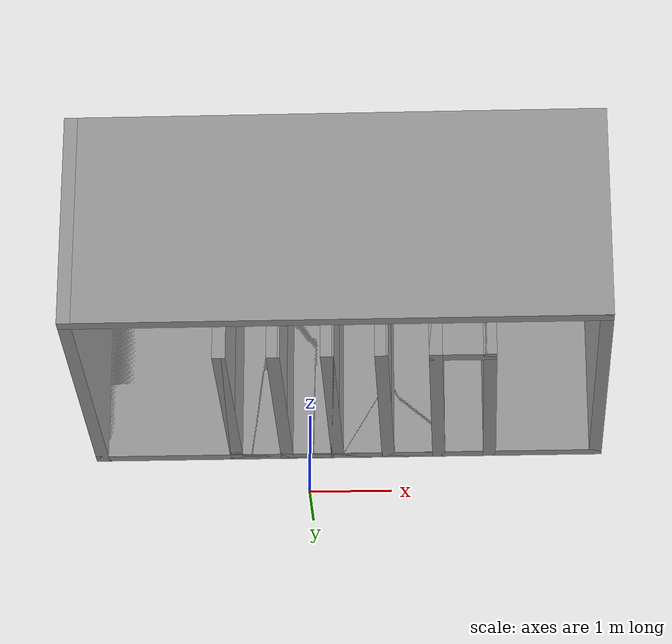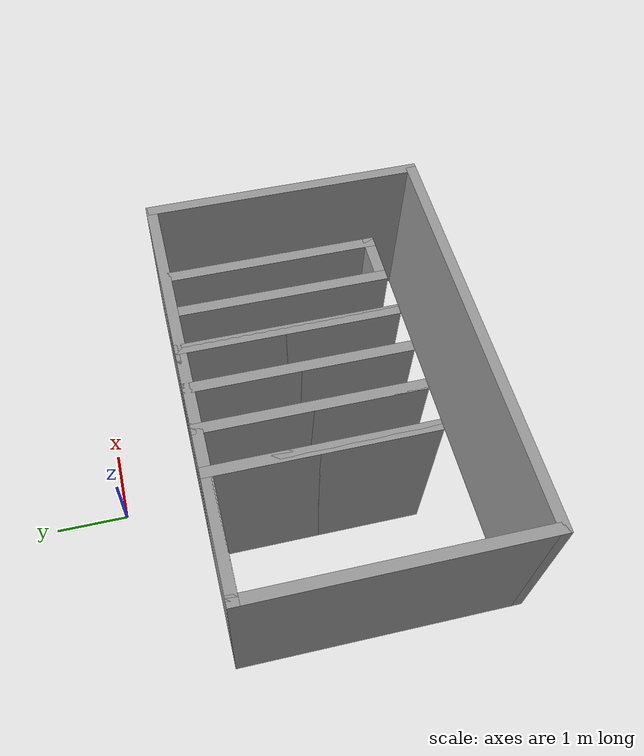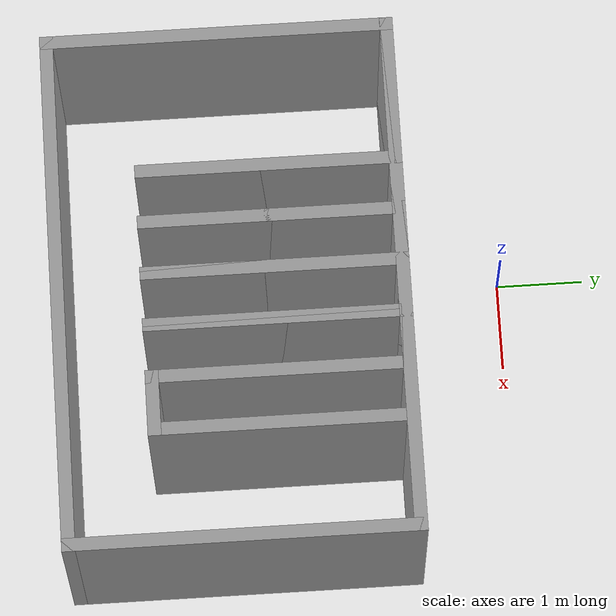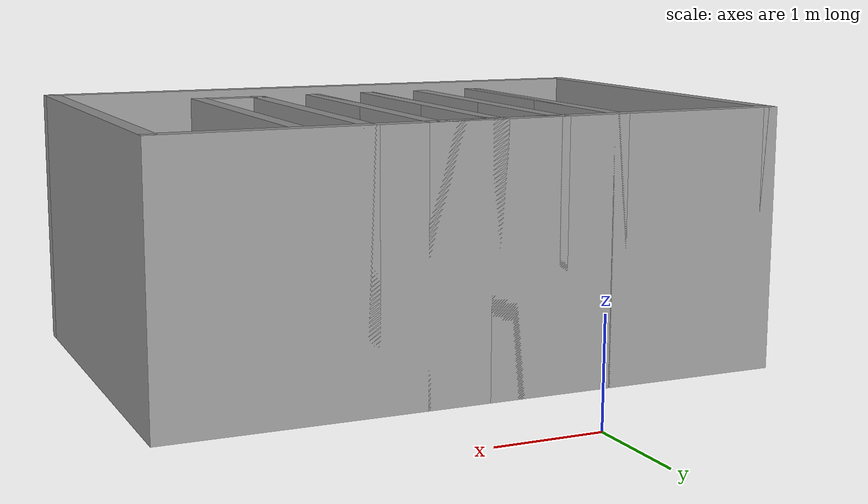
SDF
<?xml version='1.0'?>
<sdf version='1.6'>
  <model name='Map8'>
    <pose frame=''>0.515 -3.105 0 0 -0 0</pose>
    <link name='Wall_0'>
      <collision name='Wall_0_Collision'>
        <geometry>
          <box>
            <size>6 0.15 2.5</size>
          </box>
        </geometry>
        <pose frame=''>0 0 1.25 0 -0 0</pose>
      </collision>
      <visual name='Wall_0_Visual'>
        <pose frame=''>0 0 1.25 0 -0 0</pose>
        <geometry>
          <box>
            <size>6 0.15 2.5</size>
          </box>
        </geometry>
        <material>
          <script>
            <uri>file://media/materials/scripts/gazebo.material</uri>
            <name>Gazebo/Grey</name>
          </script>
          <ambient>1 1 1 1</ambient>
        </material>
      </visual>
      <pose frame=''>0 1.925 0 0 -0 0</pose>
    </link>
    <link name='Wall_1'>
      <collision name='Wall_1_Collision'>
        <geometry>
          <box>
            <size>4 0.15 2.5</size>
          </box>
        </geometry>
        <pose frame=''>0 0 1.25 0 -0 0</pose>
      </collision>
      <visual name='Wall_1_Visual'>
        <pose frame=''>0 0 1.25 0 -0 0</pose>
        <geometry>
          <box>
            <size>4 0.15 2.5</size>
          </box>
        </geometry>
        <material>
          <script>
            <uri>file://media/materials/scripts/gazebo.material</uri>
            <name>Gazebo/Grey</name>
          </script>
          <ambient>1 1 1 1</ambient>
        </material>
      </visual>
      <pose frame=''>2.925 0 0 0 0 -1.5708</pose>
    </link>
    <link name='Wall_10'>
      <collision name='Wall_10_Collision'>
        <geometry>
          <box>
            <size>0.75 0.15 2.5</size>
          </box>
        </geometry>
        <pose frame=''>0 0 1.25 0 -0 0</pose>
      </collision>
      <visual name='Wall_10_Visual'>
        <pose frame=''>0 0 1.25 0 -0 0</pose>
        <geometry>
          <box>
            <size>0.75 0.15 2.5</size>
          </box>
        </geometry>
        <material>
          <script>
            <uri>file://media/materials/scripts/gazebo.material</uri>
            <name>Gazebo/Grey</name>
          </script>
          <ambient>1 1 1 1</ambient>
        </material>
      </visual>
      <pose frame=''>-0.425 1.925 0 0 -0 0</pose>
    </link>
    <link name='Wall_11'>
      <collision name='Wall_11_Collision'>
        <geometry>
          <box>
            <size>3 0.15 2.5</size>
          </box>
        </geometry>
        <pose frame=''>0 0 1.25 0 -0 0</pose>
      </collision>
      <visual name='Wall_11_Visual'>
        <pose frame=''>0 0 1.25 0 -0 0</pose>
        <geometry>
          <box>
            <size>3 0.15 2.5</size>
          </box>
        </geometry>
        <material>
          <script>
            <uri>file://media/materials/scripts/gazebo.material</uri>
            <name>Gazebo/Grey</name>
          </script>
          <ambient>1 1 1 1</ambient>
        </material>
      </visual>
      <pose frame=''>-0.125 0.5 0 0 0 -1.5708</pose>
    </link>
    <link name='Wall_12'>
      <collision name='Wall_12_Collision'>
        <geometry>
          <box>
            <size>3 0.15 2.5</size>
          </box>
        </geometry>
        <pose frame=''>0 0 1.25 0 -0 0</pose>
      </collision>
      <visual name='Wall_12_Visual'>
        <pose frame=''>0 0 1.25 0 -0 0</pose>
        <geometry>
          <box>
            <size>3 0.15 2.5</size>
          </box>
        </geometry>
        <material>
          <script>
            <uri>file://media/materials/scripts/gazebo.material</uri>
            <name>Gazebo/Grey</name>
          </script>
          <ambient>1 1 1 1</ambient>
        </material>
      </visual>
      <pose frame=''>-0.125 0.5 0 0 -0 1.5708</pose>
    </link>
    <link name='Wall_13'>
      <collision name='Wall_13_Collision'>
        <geometry>
          <box>
            <size>0.75 0.15 2.5</size>
          </box>
        </geometry>
        <pose frame=''>0 0 1.25 0 -0 0</pose>
      </collision>
      <visual name='Wall_13_Visual'>
        <pose frame=''>0 0 1.25 0 -0 0</pose>
        <geometry>
          <box>
            <size>0.75 0.15 2.5</size>
          </box>
        </geometry>
        <material>
          <script>
            <uri>file://media/materials/scripts/gazebo.material</uri>
            <name>Gazebo/Grey</name>
          </script>
          <ambient>1 1 1 1</ambient>
        </material>
      </visual>
      <pose frame=''>0.175 1.925 0 0 -0 0</pose>
    </link>
    <link name='Wall_14'>
      <collision name='Wall_14_Collision'>
        <geometry>
          <box>
            <size>3 0.15 2.5</size>
          </box>
        </geometry>
        <pose frame=''>0 0 1.25 0 -0 0</pose>
      </collision>
      <visual name='Wall_14_Visual'>
        <pose frame=''>0 0 1.25 0 -0 0</pose>
        <geometry>
          <box>
            <size>3 0.15 2.5</size>
          </box>
        </geometry>
        <material>
          <script>
            <uri>file://media/materials/scripts/gazebo.material</uri>
            <name>Gazebo/Grey</name>
          </script>
          <ambient>1 1 1 1</ambient>
        </material>
      </visual>
      <pose frame=''>0.475 0.5 0 0 0 -1.5708</pose>
    </link>
    <link name='Wall_15'>
      <collision name='Wall_15_Collision'>
        <geometry>
          <box>
            <size>3 0.15 2.5</size>
          </box>
        </geometry>
        <pose frame=''>0 0 1.25 0 -0 0</pose>
      </collision>
      <visual name='Wall_15_Visual'>
        <pose frame=''>0 0 1.25 0 -0 0</pose>
        <geometry>
          <box>
            <size>3 0.15 2.5</size>
          </box>
        </geometry>
        <material>
          <script>
            <uri>file://media/materials/scripts/gazebo.material</uri>
            <name>Gazebo/Grey</name>
          </script>
          <ambient>1 1 1 1</ambient>
        </material>
      </visual>
      <pose frame=''>0.475 0.5 0 0 -0 1.5708</pose>
    </link>
    <link name='Wall_16'>
      <collision name='Wall_16_Collision'>
        <geometry>
          <box>
            <size>0.75 0.15 2.5</size>
          </box>
        </geometry>
        <pose frame=''>0 0 1.25 0 -0 0</pose>
      </collision>
      <visual name='Wall_16_Visual'>
        <pose frame=''>0 0 1.25 0 -0 0</pose>
        <geometry>
          <box>
            <size>0.75 0.15 2.5</size>
          </box>
        </geometry>
        <material>
          <script>
            <uri>file://media/materials/scripts/gazebo.material</uri>
            <name>Gazebo/Grey</name>
          </script>
          <ambient>1 1 1 1</ambient>
        </material>
      </visual>
      <pose frame=''>0.775 1.925 0 0 -0 0</pose>
    </link>
    <link name='Wall_17'>
      <collision name='Wall_17_Collision'>
        <geometry>
          <box>
            <size>3 0.15 2.5</size>
          </box>
        </geometry>
        <pose frame=''>0 0 1.25 0 -0 0</pose>
      </collision>
      <visual name='Wall_17_Visual'>
        <pose frame=''>0 0 1.25 0 -0 0</pose>
        <geometry>
          <box>
            <size>3 0.15 2.5</size>
          </box>
        </geometry>
        <material>
          <script>
            <uri>file://media/materials/scripts/gazebo.material</uri>
            <name>Gazebo/Grey</name>
          </script>
          <ambient>1 1 1 1</ambient>
        </material>
      </visual>
      <pose frame=''>1.075 0.5 0 0 0 -1.5708</pose>
    </link>
    <link name='Wall_18'>
      <collision name='Wall_18_Collision'>
        <geometry>
          <box>
            <size>0.75 0.15 2.5</size>
          </box>
        </geometry>
        <pose frame=''>0 0 1.25 0 -0 0</pose>
      </collision>
      <visual name='Wall_18_Visual'>
        <pose frame=''>0 0 1.25 0 -0 0</pose>
        <geometry>
          <box>
            <size>0.75 0.15 2.5</size>
          </box>
        </geometry>
        <material>
          <script>
            <uri>file://media/materials/scripts/gazebo.material</uri>
            <name>Gazebo/Grey</name>
          </script>
          <ambient>1 1 1 1</ambient>
        </material>
      </visual>
      <pose frame=''>1.375 -0.925 0 0 -0 0</pose>
    </link>
    <link name='Wall_19'>
      <collision name='Wall_19_Collision'>
        <geometry>
          <box>
            <size>3 0.15 2.5</size>
          </box>
        </geometry>
        <pose frame=''>0 0 1.25 0 -0 0</pose>
      </collision>
      <visual name='Wall_19_Visual'>
        <pose frame=''>0 0 1.25 0 -0 0</pose>
        <geometry>
          <box>
            <size>3 0.15 2.5</size>
          </box>
        </geometry>
        <material>
          <script>
            <uri>file://media/materials/scripts/gazebo.material</uri>
            <name>Gazebo/Grey</name>
          </script>
          <ambient>1 1 1 1</ambient>
        </material>
      </visual>
      <pose frame=''>1.675 0.5 0 0 -0 1.5708</pose>
    </link>
    <link name='Wall_2'>
      <collision name='Wall_2_Collision'>
        <geometry>
          <box>
            <size>6 0.15 2.5</size>
          </box>
        </geometry>
        <pose frame=''>0 0 1.25 0 -0 0</pose>
      </collision>
      <visual name='Wall_2_Visual'>
        <pose frame=''>0 0 1.25 0 -0 0</pose>
        <geometry>
          <box>
            <size>6 0.15 2.5</size>
          </box>
        </geometry>
        <material>
          <script>
            <uri>file://media/materials/scripts/gazebo.material</uri>
            <name>Gazebo/Grey</name>
          </script>
          <ambient>1 1 1 1</ambient>
        </material>
      </visual>
      <pose frame=''>0 -1.925 0 0 -0 3.14159</pose>
    </link>
    <link name='Wall_3'>
      <collision name='Wall_3_Collision'>
        <geometry>
          <box>
            <size>4 0.15 2.5</size>
          </box>
        </geometry>
        <pose frame=''>0 0 1.25 0 -0 0</pose>
      </collision>
      <visual name='Wall_3_Visual'>
        <pose frame=''>0 0 1.25 0 -0 0</pose>
        <geometry>
          <box>
            <size>4 0.15 2.5</size>
          </box>
        </geometry>
        <material>
          <script>
            <uri>file://media/materials/scripts/gazebo.material</uri>
            <name>Gazebo/Grey</name>
          </script>
          <ambient>1 1 1 1</ambient>
        </material>
      </visual>
      <pose frame=''>-2.925 0 0 0 -0 1.5708</pose>
    </link>
    <link name='Wall_4'>
      <collision name='Wall_4_Collision'>
        <geometry>
          <box>
            <size>1.75 0.15 2.5</size>
          </box>
        </geometry>
        <pose frame=''>0 0 1.25 0 -0 0</pose>
      </collision>
      <visual name='Wall_4_Visual'>
        <pose frame=''>0 0 1.25 0 -0 0</pose>
        <geometry>
          <box>
            <size>1.75 0.15 2.5</size>
          </box>
        </geometry>
        <material>
          <script>
            <uri>file://media/materials/scripts/gazebo.material</uri>
            <name>Gazebo/Grey</name>
          </script>
          <ambient>1 1 1 1</ambient>
        </material>
      </visual>
      <pose frame=''>-2.125 1.925 0 0 -0 0</pose>
    </link>
    <link name='Wall_5'>
      <collision name='Wall_5_Collision'>
        <geometry>
          <box>
            <size>3 0.15 2.5</size>
          </box>
        </geometry>
        <pose frame=''>0 0 1.25 0 -0 0</pose>
      </collision>
      <visual name='Wall_5_Visual'>
        <pose frame=''>0 0 1.25 0 -0 0</pose>
        <geometry>
          <box>
            <size>3 0.15 2.5</size>
          </box>
        </geometry>
        <material>
          <script>
            <uri>file://media/materials/scripts/gazebo.material</uri>
            <name>Gazebo/Grey</name>
          </script>
          <ambient>1 1 1 1</ambient>
        </material>
      </visual>
      <pose frame=''>-1.325 0.5 0 0 0 -1.5708</pose>
    </link>
    <link name='Wall_6'>
      <collision name='Wall_6_Collision'>
        <geometry>
          <box>
            <size>3 0.15 2.5</size>
          </box>
        </geometry>
        <pose frame=''>0 0 1.25 0 -0 0</pose>
      </collision>
      <visual name='Wall_6_Visual'>
        <pose frame=''>0 0 1.25 0 -0 0</pose>
        <geometry>
          <box>
            <size>3 0.15 2.5</size>
          </box>
        </geometry>
        <material>
          <script>
            <uri>file://media/materials/scripts/gazebo.material</uri>
            <name>Gazebo/Grey</name>
          </script>
          <ambient>1 1 1 1</ambient>
        </material>
      </visual>
      <pose frame=''>-1.325 0.5 0 0 -0 1.5708</pose>
    </link>
    <link name='Wall_7'>
      <collision name='Wall_7_Collision'>
        <geometry>
          <box>
            <size>0.75 0.15 2.5</size>
          </box>
        </geometry>
        <pose frame=''>0 0 1.25 0 -0 0</pose>
      </collision>
      <visual name='Wall_7_Visual'>
        <pose frame=''>0 0 1.25 0 -0 0</pose>
        <geometry>
          <box>
            <size>0.75 0.15 2.5</size>
          </box>
        </geometry>
        <material>
          <script>
            <uri>file://media/materials/scripts/gazebo.material</uri>
            <name>Gazebo/Grey</name>
          </script>
          <ambient>1 1 1 1</ambient>
        </material>
      </visual>
      <pose frame=''>-1.025 1.925 0 0 -0 0</pose>
    </link>
    <link name='Wall_8'>
      <collision name='Wall_8_Collision'>
        <geometry>
          <box>
            <size>3 0.15 2.5</size>
          </box>
        </geometry>
        <pose frame=''>0 0 1.25 0 -0 0</pose>
      </collision>
      <visual name='Wall_8_Visual'>
        <pose frame=''>0 0 1.25 0 -0 0</pose>
        <geometry>
          <box>
            <size>3 0.15 2.5</size>
          </box>
        </geometry>
        <material>
          <script>
            <uri>file://media/materials/scripts/gazebo.material</uri>
            <name>Gazebo/Grey</name>
          </script>
          <ambient>1 1 1 1</ambient>
        </material>
      </visual>
      <pose frame=''>-0.725 0.5 0 0 0 -1.5708</pose>
    </link>
    <link name='Wall_9'>
      <collision name='Wall_9_Collision'>
        <geometry>
          <box>
            <size>3 0.15 2.5</size>
          </box>
        </geometry>
        <pose frame=''>0 0 1.25 0 -0 0</pose>
      </collision>
      <visual name='Wall_9_Visual'>
        <pose frame=''>0 0 1.25 0 -0 0</pose>
        <geometry>
          <box>
            <size>3 0.15 2.5</size>
          </box>
        </geometry>
        <material>
          <script>
            <uri>file://media/materials/scripts/gazebo.material</uri>
            <name>Gazebo/Grey</name>
          </script>
          <ambient>1 1 1 1</ambient>
        </material>
      </visual>
      <pose frame=''>-0.725 0.5 0 0 -0 1.5708</pose>
    </link>
    <static>1</static>
  </model>
</sdf>
